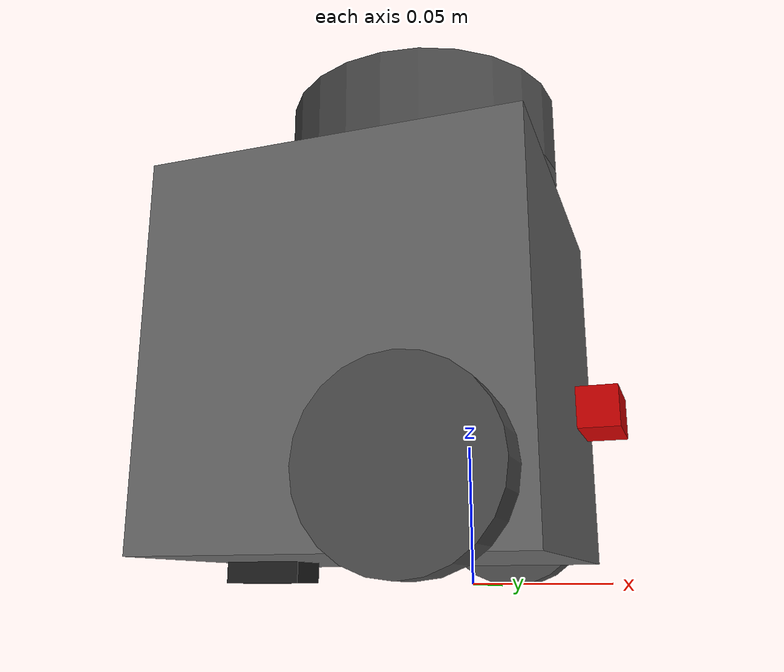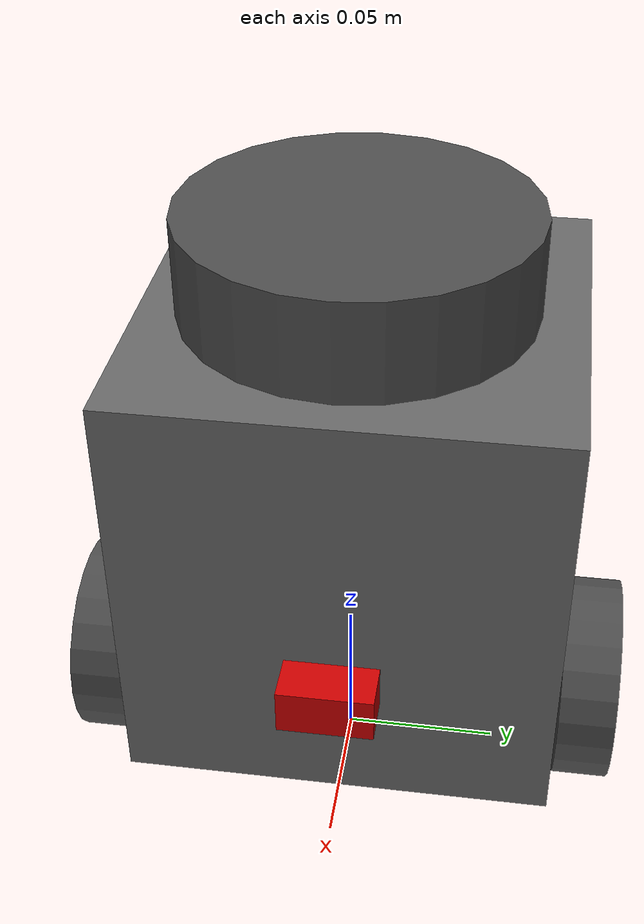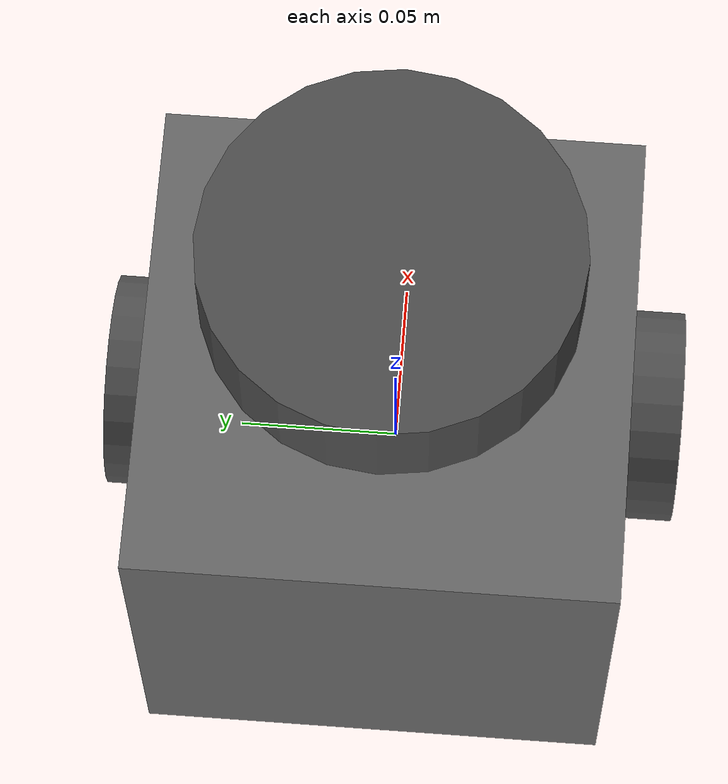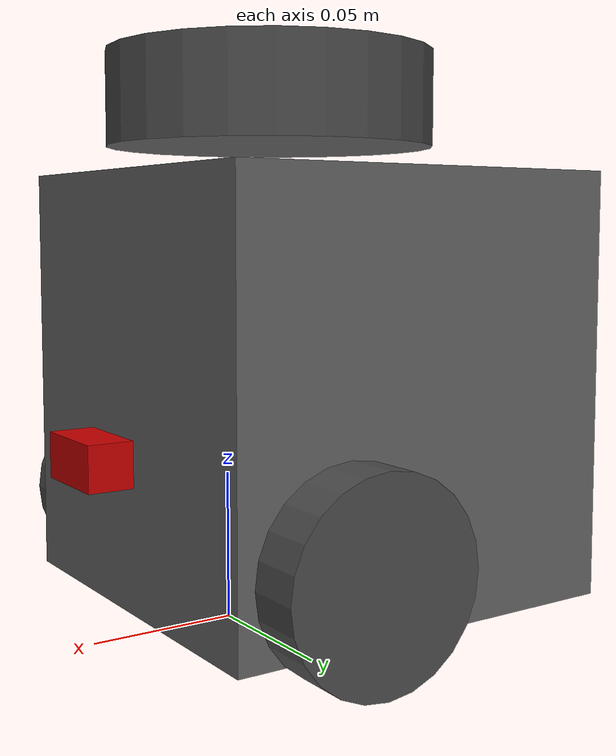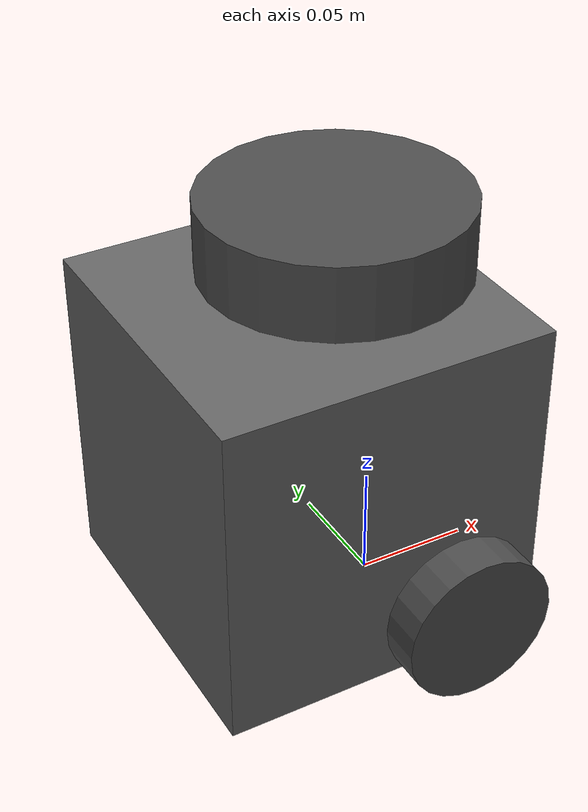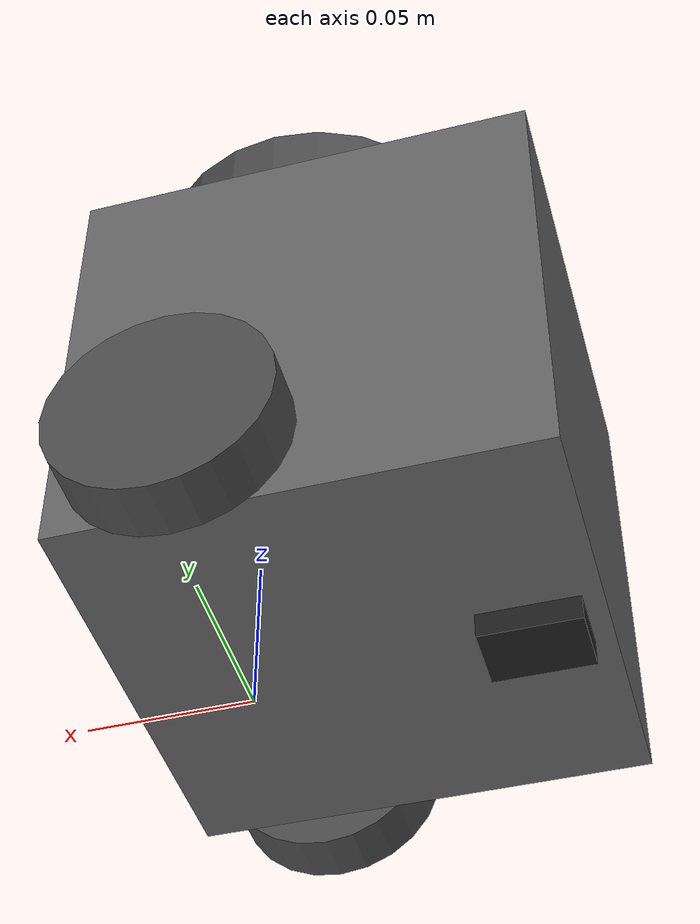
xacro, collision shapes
<?xml version="1.0" ?>
<robot name="turtlebot3_burger"
  xmlns:xacro="http://ros.org/wiki/xacro">

  <xacro:arg name="namespace" default=""/>
  <xacro:property name="namespace" value="$(arg namespace)"/>
  <xacro:property name="mesh_path" value="file://$(find final_project)/meshes"/>

  <!-- Init colour -->
  <material name="black">
      <color rgba="0.0 0.0 0.0 1.0"/>
  </material>

  <material name="dark">
    <color rgba="0.3 0.3 0.3 1.0"/>
  </material>

  <material name="light_black">
    <color rgba="0.4 0.4 0.4 1.0"/>
  </material>

  <material name="blue">
    <color rgba="0.0 0.0 0.8 1.0"/>
  </material>

  <material name="green">
    <color rgba="0.0 0.8 0.0 1.0"/>
  </material>

  <material name="grey">
    <color rgba="0.5 0.5 0.5 1.0"/>
  </material>

  <material name="orange">
    <color rgba="1.0 0.4235 0.0392 1.0"/>
  </material>

  <material name="brown">
    <color rgba="0.8706 0.8118 0.7647 1.0"/>
  </material>

  <material name="red">
    <color rgba="0.8 0.0 0.0 1.0"/>
  </material>

  <material name="white">
    <color rgba="1.0 1.0 1.0 1.0"/>
  </material>

  <link name="${namespace}base_footprint"/>

  <joint name="${namespace}base_joint" type="fixed">
    <parent link="${namespace}base_footprint"/>
    <child link="${namespace}base_link"/>
    <origin xyz="0.0 0.0 0.010" rpy="0 0 0"/>
  </joint>

  <link name="${namespace}base_link">
    <visual>
      <origin xyz="-0.032 0 0.0" rpy="0 0 0"/>
      <geometry>
        <mesh filename="${mesh_path}/bases/burger_base.stl" scale="0.001 0.001 0.001"/>
      </geometry>
      <material name="light_black"/>
    </visual>

    <collision>
      <origin xyz="-0.032 0 0.070" rpy="0 0 0"/>
      <geometry>
        <box size="0.140 0.140 0.143"/>
      </geometry>
    </collision>

    <inertial>
      <origin xyz="0 0 0" rpy="0 0 0"/>
      <mass value="8.2573504e-01"/>
      <inertia ixx="2.2124416e-03" ixy="-1.2294101e-05" ixz="3.4938785e-05" iyy="2.1193702e-03" iyz="-5.0120904e-06" izz="2.0064271e-03" />
    </inertial>
  </link>

  <joint name="${namespace}wheel_left_joint" type="continuous">
    <parent link="${namespace}base_link"/>
    <child link="${namespace}wheel_left_link"/>
    <origin xyz="0.0 0.08 0.023" rpy="-1.57 0 0"/>
    <axis xyz="0 0 1"/>
  </joint>

  <link name="${namespace}wheel_left_link">
    <visual>
      <origin xyz="0 0 0" rpy="1.57 0 0"/>
      <geometry>
        <mesh filename="${mesh_path}/wheels/left_tire.stl" scale="0.001 0.001 0.001"/>
      </geometry>
      <material name="dark"/>
    </visual>

    <collision>
      <origin xyz="0 0 0" rpy="0 0 0"/>
      <geometry>
        <cylinder length="0.018" radius="0.033"/>
      </geometry>
    </collision>

    <inertial>
      <origin xyz="0 0 0" />
      <mass value="2.8498940e-02" />
      <inertia ixx="1.1175580e-05" ixy="-4.2369783e-11" ixz="-5.9381719e-09" iyy="1.1192413e-05" iyz="-1.4400107e-11" izz="2.0712558e-05" />
    </inertial>
  </link>

  <joint name="${namespace}wheel_right_joint" type="continuous">
    <parent link="${namespace}base_link"/>
    <child link="${namespace}wheel_right_link"/>
    <origin xyz="0.0 -0.080 0.023" rpy="-1.57 0 0"/>
    <axis xyz="0 0 1"/>
  </joint>

  <link name="${namespace}wheel_right_link">
    <visual>
      <origin xyz="0 0 0" rpy="1.57 0 0"/>
      <geometry>
        <mesh filename="${mesh_path}/wheels/right_tire.stl" scale="0.001 0.001 0.001"/>
      </geometry>
      <material name="dark"/>
    </visual>

    <collision>
      <origin xyz="0 0 0" rpy="0 0 0"/>
      <geometry>
        <cylinder length="0.018" radius="0.033"/>
      </geometry>
    </collision>

    <inertial>
      <origin xyz="0 0 0" />
      <mass value="2.8498940e-02" />
      <inertia ixx="1.1175580e-05" ixy="-4.2369783e-11" ixz="-5.9381719e-09" iyy="1.1192413e-05" iyz="-1.4400107e-11" izz="2.0712558e-05" />
    </inertial>
  </link>

  <joint name="${namespace}caster_back_joint" type="fixed">
    <parent link="${namespace}base_link"/>
    <child link="${namespace}caster_back_link"/>
    <origin xyz="-0.081 0 -0.004" rpy="-1.57 0 0"/>
  </joint>

  <link name="${namespace}caster_back_link">
    <collision>
      <origin xyz="0 0.001 0" rpy="0 0 0"/>
      <geometry>
        <box size="0.030 0.009 0.020"/>
      </geometry>
    </collision>

    <inertial>
      <origin xyz="0 0 0" />
      <mass value="0.005" />
      <inertia ixx="0.001" ixy="0.0" ixz="0.0" iyy="0.001" iyz="0.0" izz="0.001" />
    </inertial>
  </link>

  <joint name="${namespace}imu_joint" type="fixed">
    <parent link="${namespace}base_link"/>
    <child link="${namespace}imu_link"/>
    <origin xyz="-0.032 0 0.068" rpy="0 0 0"/>
  </joint>

  <link name="${namespace}imu_link"/>

  <joint name="${namespace}scan_joint" type="fixed">
    <parent link="${namespace}base_link"/>
    <child link="${namespace}base_scan"/>
    <origin xyz="-0.032 0 0.172" rpy="0 0 0"/>
  </joint>

  <link name="${namespace}base_scan">
    <visual>
      <origin xyz="0 0 0.0" rpy="0 0 0"/>
      <geometry>
        <mesh filename="${mesh_path}/sensors/lds.stl" scale="0.001 0.001 0.001"/>
      </geometry>
      <material name="dark"/>
    </visual>

    <collision>
      <origin xyz="0.015 0 -0.0065" rpy="0 0 0"/>
      <geometry>
        <cylinder length="0.0315" radius="0.055"/>
      </geometry>
    </collision>

    <inertial>
      <mass value="0.114" />
      <origin xyz="0 0 0" />
      <inertia ixx="0.001" ixy="0.0" ixz="0.0" iyy="0.001" iyz="0.0" izz="0.001" />
    </inertial>
  </link>

  <!-- ==================== CAMERA SENSOR ==================== -->
  <!-- Camera link - positioned at front-bottom of robot, angled down -->
  <joint name="${namespace}camera_joint" type="fixed">
    <parent link="${namespace}base_link"/>
    <child link="${namespace}camera_link"/>
    <!-- Position: front of robot (x=0.05), centered (y=0), low height (z=0.05) -->
    <!-- Orientation: tilted down 20 degrees (0.349 radians) to see ground markers -->
    <origin xyz="0.05 0 0.05" rpy="0 0 0"/>
  </joint>

  <link name="${namespace}camera_link">
    <visual>
      <origin xyz="0 0 0" rpy="0 0 0"/>
      <geometry>
        <box size="0.015 0.030 0.015"/>
      </geometry>
      <material name="red"/>
    </visual>

    <collision>
      <origin xyz="0 0 0" rpy="0 0 0"/>
      <geometry>
        <box size="0.015 0.030 0.015"/>
      </geometry>
    </collision>

    <inertial>
      <mass value="0.035"/>
      <origin xyz="0 0 0"/>
      <inertia ixx="0.001" ixy="0.0" ixz="0.0"
               iyy="0.001" iyz="0.0" izz="0.001"/>
    </inertial>
  </link>

  <!-- Camera optical frame - follows ROS convention (x-right, y-down, z-forward) -->
  <joint name="${namespace}camera_optical_joint" type="fixed">
    <parent link="${namespace}camera_link"/>
    <child link="${namespace}camera_rgb_optical_frame"/>
    <!-- Rotate to ROS optical frame convention -->
    <origin xyz="0 0 0" rpy="-1.5707963267948966 0 -1.5707963267948966"/>
  </joint>

  <link name="${namespace}camera_rgb_optical_frame"/>

  <!-- ==================== GAZEBO CAMERA PLUGIN ==================== -->
  <gazebo reference="${namespace}camera_link">
    <material>Gazebo/Red</material>
    <sensor type="camera" name="camera_sensor">
      <update_rate>30.0</update_rate>
      <visualize>true</visualize>
      <camera name="camera">
        <horizontal_fov>1.0472</horizontal_fov> <!-- 60 degrees -->
        <image>
          <width>640</width>
          <height>480</height>
          <format>R8G8B8</format>
        </image>
        <clip>
          <near>0.02</near>
          <far>10</far>
        </clip>
        <noise>
          <type>gaussian</type>
          <mean>0.0</mean>
          <stddev>0.007</stddev>
        </noise>
      </camera>
      <plugin name="camera_controller" filename="libgazebo_ros_camera.so">
        <ros>
          <namespace>${namespace}</namespace>
          <remapping>~/image_raw:=camera/image_raw</remapping>
          <remapping>~/camera_info:=camera/camera_info</remapping>
        </ros>
        <camera_name>camera</camera_name>
        <frame_name>${namespace}camera_rgb_optical_frame</frame_name>
        <hack_baseline>0.07</hack_baseline>
      </plugin>
    </sensor>
  </gazebo>

  <!-- Gazebo plugin for diff drive in gazebo 11-->
  <gazebo>
    <plugin name="gazebo_ros_control" filename="libgazebo_ros_diff_drive.so">
      <update_rate>30</update_rate>
      <left_joint>${namespace}wheel_left_joint</left_joint>
      <right_joint>${namespace}wheel_right_joint</right_joint>
      <wheel_separation>0.160</wheel_separation>
      <wheel_diameter>0.066</wheel_diameter>
      <max_wheel_torque>20</max_wheel_torque>
      <command_topic>cmd_vel</command_topic>
      <odometry_topic>odom</odometry_topic>
      <odometry_frame>odom</odometry_frame>
      <robot_base_frame>${namespace}base_footprint</robot_base_frame>
      <publish_odom>true</publish_odom>
      <publish_odom_tf>true</publish_odom_tf>
      <publish_wheel_tf>false</publish_wheel_tf>
    </plugin>
  </gazebo>

  <!-- Gazebo materials for visibility and plugins for lidar and joint state publisher-->
  <gazebo reference="${namespace}base_link">
    <material>Gazebo/DarkGrey</material>
    <visual>
      <material>
        <ambient>0.4 0.4 0.4 1</ambient>
        <diffuse>0.4 0.4 0.4 1</diffuse>
      </material>
    </visual>
  </gazebo>

  <gazebo reference="${namespace}wheel_left_link">
    <material>Gazebo/Black</material>
  </gazebo>

  <gazebo reference="${namespace}wheel_right_link">
    <material>Gazebo/Black</material>
  </gazebo>

  <gazebo reference="${namespace}caster_back_link">
    <material>Gazebo/Black</material>
    <visual>
      <material>
        <ambient>0.1 0.1 0.1 1</ambient>
        <diffuse>0.1 0.1 0.1 1</diffuse>
      </material>
    </visual>
    <mu1>0.0</mu1>
    <mu2>0.0</mu2>
  </gazebo>

  <gazebo reference="${namespace}base_scan">
    <material>Gazebo/Black</material>
    <sensor type="ray" name="lds_lfcd_sensor">
      <pose>0 0 0 0 0 0</pose>
      <visualize>false</visualize>
      <update_rate>5</update_rate>
      <ray>
        <scan>
          <horizontal>
            <samples>360</samples>
            <resolution>1</resolution>
            <min_angle>0.0</min_angle>
            <max_angle>6.28319</max_angle>
          </horizontal>
        </scan>
        <range>
          <min>0.120</min>
          <max>3.5</max>
          <resolution>0.015</resolution>
        </range>
        <noise>
          <type>gaussian</type>
          <mean>0.0</mean>
          <stddev>0.01</stddev>
        </noise>
      </ray>
      <plugin name="gazebo_ros_lds_lfcd_controller" filename="libgazebo_ros_ray_sensor.so">
        <ros>
          <remapping>~/out:=scan</remapping>
        </ros>
        <output_type>sensor_msgs/LaserScan</output_type>
        <frame_name>${namespace}base_scan</frame_name>
      </plugin>
    </sensor>
  </gazebo>

  <gazebo>
    <plugin name="gazebo_ros_joint_state_publisher" filename="libgazebo_ros_joint_state_publisher.so">
      <update_rate>20</update_rate>
      <joint_name>${namespace}wheel_left_joint</joint_name>
      <joint_name>${namespace}wheel_right_joint</joint_name>
    </plugin>
  </gazebo>

</robot>
